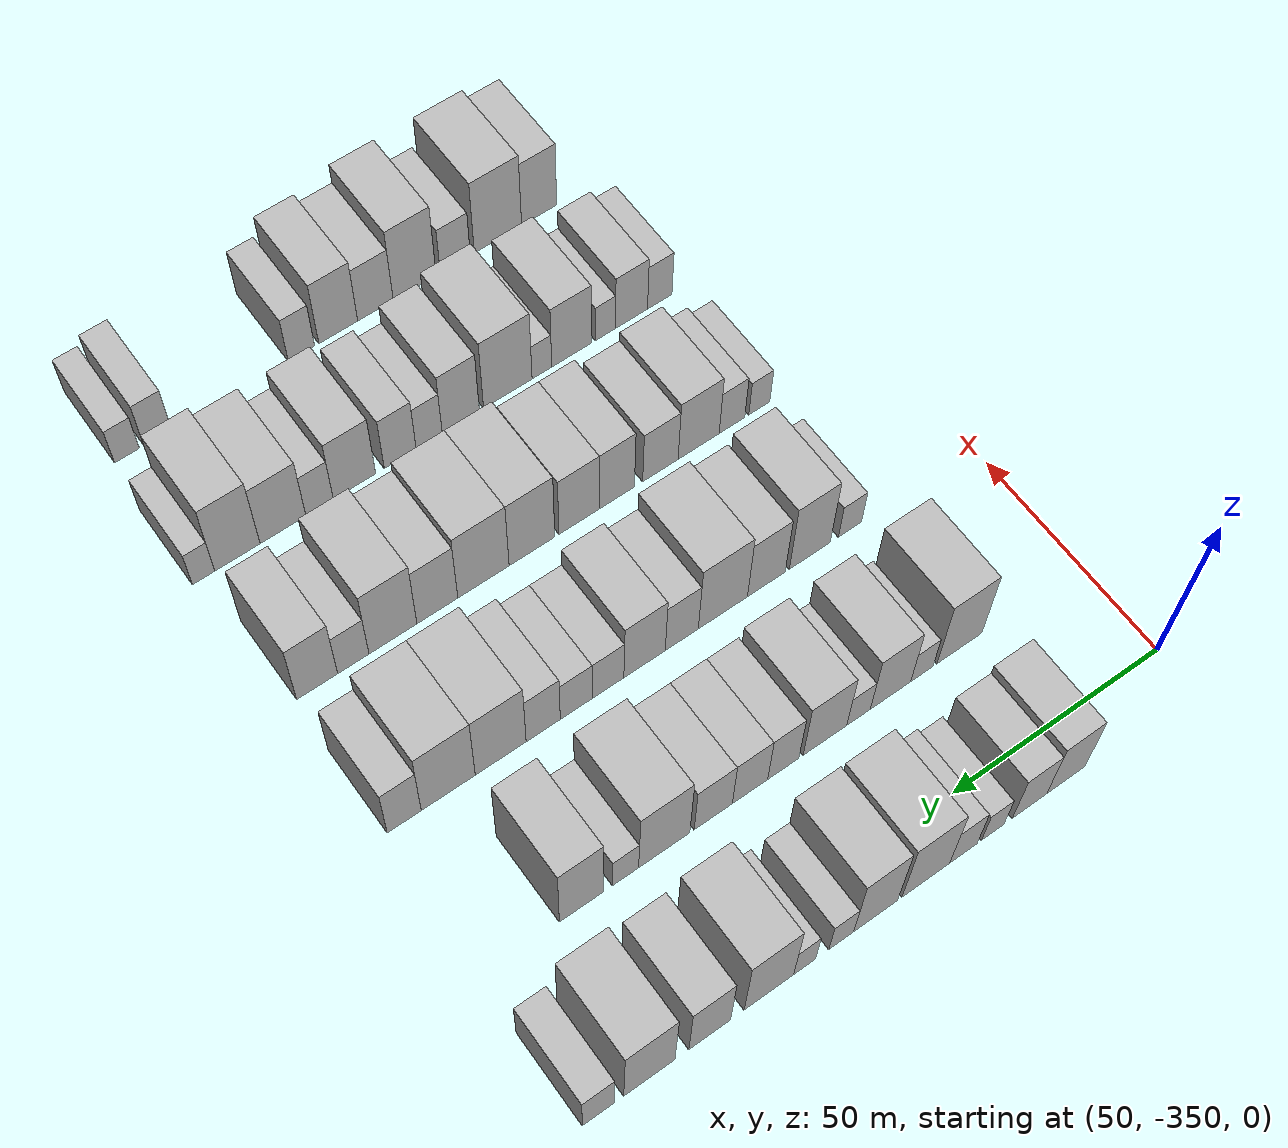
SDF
<sdf version="1.6">
 <world name="default">
  <model name="building_22">
   <static>1</static>
   <pose>50.0000 -318.6219 0 0.000000 0.000000 0.000000</pose>
   <link name="link">
    <pose>0 0 10.50 0 0 0</pose>
    <collision name="collision"><geometry><box><size>20.0000 9.2793 21.0000</size></box></geometry></collision>
    <visual name="visual">
     <cast_shadows>0</cast_shadows>
     <geometry><box><size>20.0000 9.2793 21.0000</size></box></geometry>
     <material>
      <script>
       <uri>model://HANNAS_wall/materials/scripts</uri>
       <uri>model://HANNAS_wall/materials/textures</uri>
       <name>vrc/HANNAS_wall</name>
      </script>
     </material>
    </visual>
   </link>
  </model>
  <model name="building_23">
   <static>1</static>
   <pose>50.0000 -309.8643 0 0.000000 0.000000 0.000000</pose>
   <link name="link">
    <pose>0 0 9.00 0 0 0</pose>
    <collision name="collision"><geometry><box><size>20.0000 8.2358 18.0000</size></box></geometry></collision>
    <visual name="visual">
     <cast_shadows>0</cast_shadows>
     <geometry><box><size>20.0000 8.2358 18.0000</size></box></geometry>
     <material>
      <script>
       <uri>model://HANNAS_wall/materials/scripts</uri>
       <uri>model://HANNAS_wall/materials/textures</uri>
       <name>vrc/HANNAS_wall</name>
      </script>
     </material>
    </visual>
   </link>
  </model>
  <model name="building_24">
   <static>1</static>
   <pose>50.0000 -301.0846 0 0.000000 0.000000 0.000000</pose>
   <link name="link">
    <pose>0 0 6.00 0 0 0</pose>
    <collision name="collision"><geometry><box><size>20.0000 5.3236 12.0000</size></box></geometry></collision>
    <visual name="visual">
     <cast_shadows>0</cast_shadows>
     <geometry><box><size>20.0000 5.3236 12.0000</size></box></geometry>
     <material>
      <script>
       <uri>model://HANNAS_wall/materials/scripts</uri>
       <uri>model://HANNAS_wall/materials/textures</uri>
       <name>vrc/HANNAS_wall</name>
      </script>
     </material>
    </visual>
   </link>
  </model>
  <model name="building_25">
   <static>1</static>
   <pose>50.0000 -294.1895 0 0.000000 0.000000 0.000000</pose>
   <link name="link">
    <pose>0 0 7.50 0 0 0</pose>
    <collision name="collision"><geometry><box><size>20.0000 6.4666 15.0000</size></box></geometry></collision>
    <visual name="visual">
     <cast_shadows>0</cast_shadows>
     <geometry><box><size>20.0000 6.4666 15.0000</size></box></geometry>
     <material>
      <script>
       <uri>model://HANNAS_wall/materials/scripts</uri>
       <uri>model://HANNAS_wall/materials/textures</uri>
       <name>vrc/HANNAS_wall</name>
      </script>
     </material>
    </visual>
   </link>
  </model>
  <model name="building_26">
   <static>1</static>
   <pose>50.0000 -285.3970 0 0.000000 0.000000 0.000000</pose>
   <link name="link">
    <pose>0 0 12.00 0 0 0</pose>
    <collision name="collision"><geometry><box><size>20.0000 11.1183 24.0000</size></box></geometry></collision>
    <visual name="visual">
     <cast_shadows>0</cast_shadows>
     <geometry><box><size>20.0000 11.1183 24.0000</size></box></geometry>
     <material>
      <script>
       <uri>model://HANNAS_wall/materials/scripts</uri>
       <uri>model://HANNAS_wall/materials/textures</uri>
       <name>vrc/HANNAS_wall</name>
      </script>
     </material>
    </visual>
   </link>
  </model>
  <model name="building_27">
   <static>1</static>
   <pose>50.0000 -273.7909 0 0.000000 0.000000 0.000000</pose>
   <link name="link">
    <pose>0 0 12.00 0 0 0</pose>
    <collision name="collision"><geometry><box><size>20.0000 10.0939 24.0000</size></box></geometry></collision>
    <visual name="visual">
     <cast_shadows>0</cast_shadows>
     <geometry><box><size>20.0000 10.0939 24.0000</size></box></geometry>
     <material>
      <script>
       <uri>model://HANNAS_wall/materials/scripts</uri>
       <uri>model://HANNAS_wall/materials/textures</uri>
       <name>vrc/HANNAS_wall</name>
      </script>
     </material>
    </visual>
   </link>
  </model>
  <model name="building_28">
   <static>1</static>
   <pose>50.0000 -265.9480 0 0.000000 0.000000 0.000000</pose>
   <link name="link">
    <pose>0 0 6.00 0 0 0</pose>
    <collision name="collision"><geometry><box><size>20.0000 5.5919 12.0000</size></box></geometry></collision>
    <visual name="visual">
     <cast_shadows>0</cast_shadows>
     <geometry><box><size>20.0000 5.5919 12.0000</size></box></geometry>
     <material>
      <script>
       <uri>model://HANNAS_wall/materials/scripts</uri>
       <uri>model://HANNAS_wall/materials/textures</uri>
       <name>vrc/HANNAS_wall</name>
      </script>
     </material>
    </visual>
   </link>
  </model>
  <model name="building_29">
   <static>1</static>
   <pose>50.0000 -257.6963 0 0.000000 0.000000 0.000000</pose>
   <link name="link">
    <pose>0 0 6.00 0 0 0</pose>
    <collision name="collision"><geometry><box><size>20.0000 4.9115 12.0000</size></box></geometry></collision>
    <visual name="visual">
     <cast_shadows>0</cast_shadows>
     <geometry><box><size>20.0000 4.9115 12.0000</size></box></geometry>
     <material>
      <script>
       <uri>model://HANNAS_wall/materials/scripts</uri>
       <uri>model://HANNAS_wall/materials/textures</uri>
       <name>vrc/HANNAS_wall</name>
      </script>
     </material>
    </visual>
   </link>
  </model>
  <model name="building_30">
   <static>1</static>
   <pose>50.0000 -249.7525 0 0.000000 0.000000 0.000000</pose>
   <link name="link">
    <pose>0 0 12.00 0 0 0</pose>
    <collision name="collision"><geometry><box><size>20.0000 10.9759 24.0000</size></box></geometry></collision>
    <visual name="visual">
     <cast_shadows>0</cast_shadows>
     <geometry><box><size>20.0000 10.9759 24.0000</size></box></geometry>
     <material>
      <script>
       <uri>model://HANNAS_wall/materials/scripts</uri>
       <uri>model://HANNAS_wall/materials/textures</uri>
       <name>vrc/HANNAS_wall</name>
      </script>
     </material>
    </visual>
   </link>
  </model>
  <model name="building_31">
   <static>1</static>
   <pose>50.0000 -236.7100 0 0.000000 0.000000 0.000000</pose>
   <link name="link">
    <pose>0 0 10.50 0 0 0</pose>
    <collision name="collision"><geometry><box><size>20.0000 9.1091 21.0000</size></box></geometry></collision>
    <visual name="visual">
     <cast_shadows>0</cast_shadows>
     <geometry><box><size>20.0000 9.1091 21.0000</size></box></geometry>
     <material>
      <script>
       <uri>model://HANNAS_wall/materials/scripts</uri>
       <uri>model://HANNAS_wall/materials/textures</uri>
       <name>vrc/HANNAS_wall</name>
      </script>
     </material>
    </visual>
   </link>
  </model>
  <model name="building_32">
   <static>1</static>
   <pose>50.0000 -223.6549 0 0.000000 0.000000 0.000000</pose>
   <link name="link">
    <pose>0 0 12.00 0 0 0</pose>
    <collision name="collision"><geometry><box><size>20.0000 11.0012 24.0000</size></box></geometry></collision>
    <visual name="visual">
     <cast_shadows>0</cast_shadows>
     <geometry><box><size>20.0000 11.0012 24.0000</size></box></geometry>
     <material>
      <script>
       <uri>model://HANNAS_wall/materials/scripts</uri>
       <uri>model://HANNAS_wall/materials/textures</uri>
       <name>vrc/HANNAS_wall</name>
      </script>
     </material>
    </visual>
   </link>
  </model>
  <model name="building_33">
   <static>1</static>
   <pose>50.0000 -212.7712 0 0.000000 0.000000 0.000000</pose>
   <link name="link">
    <pose>0 0 7.50 0 0 0</pose>
    <collision name="collision"><geometry><box><size>20.0000 6.7662 15.0000</size></box></geometry></collision>
    <visual name="visual">
     <cast_shadows>0</cast_shadows>
     <geometry><box><size>20.0000 6.7662 15.0000</size></box></geometry>
     <material>
      <script>
       <uri>model://HANNAS_wall/materials/scripts</uri>
       <uri>model://HANNAS_wall/materials/textures</uri>
       <name>vrc/HANNAS_wall</name>
      </script>
     </material>
    </visual>
   </link>
  </model>
  <model name="building_142">
   <static>1</static>
   <pose>82.0000 -319.7388 0 0.000000 0.000000 0.000000</pose>
   <link name="link">
    <pose>0 0 12.00 0 0 0</pose>
    <collision name="collision"><geometry><box><size>20.0000 10.9948 24.0000</size></box></geometry></collision>
    <visual name="visual">
     <cast_shadows>0</cast_shadows>
     <geometry><box><size>20.0000 10.9948 24.0000</size></box></geometry>
     <material>
      <script>
       <uri>model://HANNAS_wall/materials/scripts</uri>
       <uri>model://HANNAS_wall/materials/textures</uri>
       <name>vrc/HANNAS_wall</name>
      </script>
     </material>
    </visual>
   </link>
  </model>
  <model name="building_143">
   <static>1</static>
   <pose>82.0000 -310.5391 0 0.000000 0.000000 0.000000</pose>
   <link name="link">
    <pose>0 0 6.00 0 0 0</pose>
    <collision name="collision"><geometry><box><size>20.0000 5.4045 12.0000</size></box></geometry></collision>
    <visual name="visual">
     <cast_shadows>0</cast_shadows>
     <geometry><box><size>20.0000 5.4045 12.0000</size></box></geometry>
     <material>
      <script>
       <uri>model://HANNAS_wall/materials/scripts</uri>
       <uri>model://HANNAS_wall/materials/textures</uri>
       <name>vrc/HANNAS_wall</name>
      </script>
     </material>
    </visual>
   </link>
  </model>
  <model name="building_144">
   <static>1</static>
   <pose>82.0000 -302.9919 0 0.000000 0.000000 0.000000</pose>
   <link name="link">
    <pose>0 0 10.50 0 0 0</pose>
    <collision name="collision"><geometry><box><size>20.0000 9.6900 21.0000</size></box></geometry></collision>
    <visual name="visual">
     <cast_shadows>0</cast_shadows>
     <geometry><box><size>20.0000 9.6900 21.0000</size></box></geometry>
     <material>
      <script>
       <uri>model://HANNAS_wall/materials/scripts</uri>
       <uri>model://HANNAS_wall/materials/textures</uri>
       <name>vrc/HANNAS_wall</name>
      </script>
     </material>
    </visual>
   </link>
  </model>
  <model name="building_145">
   <static>1</static>
   <pose>82.0000 -295.3424 0 0.000000 0.000000 0.000000</pose>
   <link name="link">
    <pose>0 0 6.00 0 0 0</pose>
    <collision name="collision"><geometry><box><size>20.0000 5.6089 12.0000</size></box></geometry></collision>
    <visual name="visual">
     <cast_shadows>0</cast_shadows>
     <geometry><box><size>20.0000 5.6089 12.0000</size></box></geometry>
     <material>
      <script>
       <uri>model://HANNAS_wall/materials/scripts</uri>
       <uri>model://HANNAS_wall/materials/textures</uri>
       <name>vrc/HANNAS_wall</name>
      </script>
     </material>
    </visual>
   </link>
  </model>
  <model name="building_146">
   <static>1</static>
   <pose>82.0000 -287.3828 0 0.000000 0.000000 0.000000</pose>
   <link name="link">
    <pose>0 0 10.50 0 0 0</pose>
    <collision name="collision"><geometry><box><size>20.0000 10.3103 21.0000</size></box></geometry></collision>
    <visual name="visual">
     <cast_shadows>0</cast_shadows>
     <geometry><box><size>20.0000 10.3103 21.0000</size></box></geometry>
     <material>
      <script>
       <uri>model://HANNAS_wall/materials/scripts</uri>
       <uri>model://HANNAS_wall/materials/textures</uri>
       <name>vrc/HANNAS_wall</name>
      </script>
     </material>
    </visual>
   </link>
  </model>
  <model name="building_147">
   <static>1</static>
   <pose>82.0000 -277.5974 0 0.000000 0.000000 0.000000</pose>
   <link name="link">
    <pose>0 0 9.00 0 0 0</pose>
    <collision name="collision"><geometry><box><size>20.0000 7.2604 18.0000</size></box></geometry></collision>
    <visual name="visual">
     <cast_shadows>0</cast_shadows>
     <geometry><box><size>20.0000 7.2604 18.0000</size></box></geometry>
     <material>
      <script>
       <uri>model://HANNAS_wall/materials/scripts</uri>
       <uri>model://HANNAS_wall/materials/textures</uri>
       <name>vrc/HANNAS_wall</name>
      </script>
     </material>
    </visual>
   </link>
  </model>
  <model name="building_148">
   <static>1</static>
   <pose>82.0000 -269.8889 0 0.000000 0.000000 0.000000</pose>
   <link name="link">
    <pose>0 0 9.00 0 0 0</pose>
    <collision name="collision"><geometry><box><size>20.0000 8.1567 18.0000</size></box></geometry></collision>
    <visual name="visual">
     <cast_shadows>0</cast_shadows>
     <geometry><box><size>20.0000 8.1567 18.0000</size></box></geometry>
     <material>
      <script>
       <uri>model://HANNAS_wall/materials/scripts</uri>
       <uri>model://HANNAS_wall/materials/textures</uri>
       <name>vrc/HANNAS_wall</name>
      </script>
     </material>
    </visual>
   </link>
  </model>
  <model name="building_149">
   <static>1</static>
   <pose>82.0000 -261.4583 0 0.000000 0.000000 0.000000</pose>
   <link name="link">
    <pose>0 0 9.00 0 0 0</pose>
    <collision name="collision"><geometry><box><size>20.0000 8.7045 18.0000</size></box></geometry></collision>
    <visual name="visual">
     <cast_shadows>0</cast_shadows>
     <geometry><box><size>20.0000 8.7045 18.0000</size></box></geometry>
     <material>
      <script>
       <uri>model://HANNAS_wall/materials/scripts</uri>
       <uri>model://HANNAS_wall/materials/textures</uri>
       <name>vrc/HANNAS_wall</name>
      </script>
     </material>
    </visual>
   </link>
  </model>
  <model name="building_150">
   <static>1</static>
   <pose>82.0000 -250.3391 0 0.000000 0.000000 0.000000</pose>
   <link name="link">
    <pose>0 0 12.00 0 0 0</pose>
    <collision name="collision"><geometry><box><size>20.0000 11.5338 24.0000</size></box></geometry></collision>
    <visual name="visual">
     <cast_shadows>0</cast_shadows>
     <geometry><box><size>20.0000 11.5338 24.0000</size></box></geometry>
     <material>
      <script>
       <uri>model://HANNAS_wall/materials/scripts</uri>
       <uri>model://HANNAS_wall/materials/textures</uri>
       <name>vrc/HANNAS_wall</name>
      </script>
     </material>
    </visual>
   </link>
  </model>
  <model name="building_151">
   <static>1</static>
   <pose>82.0000 -241.6636 0 0.000000 0.000000 0.000000</pose>
   <link name="link">
    <pose>0 0 6.00 0 0 0</pose>
    <collision name="collision"><geometry><box><size>20.0000 5.8171 12.0000</size></box></geometry></collision>
    <visual name="visual">
     <cast_shadows>0</cast_shadows>
     <geometry><box><size>20.0000 5.8171 12.0000</size></box></geometry>
     <material>
      <script>
       <uri>model://HANNAS_wall/materials/scripts</uri>
       <uri>model://HANNAS_wall/materials/textures</uri>
       <name>vrc/HANNAS_wall</name>
      </script>
     </material>
    </visual>
   </link>
  </model>
  <model name="building_152">
   <static>1</static>
   <pose>82.0000 -231.9148 0 0.000000 0.000000 0.000000</pose>
   <link name="link">
    <pose>0 0 12.00 0 0 0</pose>
    <collision name="collision"><geometry><box><size>20.0000 9.6806 24.0000</size></box></geometry></collision>
    <visual name="visual">
     <cast_shadows>0</cast_shadows>
     <geometry><box><size>20.0000 9.6806 24.0000</size></box></geometry>
     <material>
      <script>
       <uri>model://HANNAS_wall/materials/scripts</uri>
       <uri>model://HANNAS_wall/materials/textures</uri>
       <name>vrc/HANNAS_wall</name>
      </script>
     </material>
    </visual>
   </link>
  </model>
  <model name="building_259">
   <static>1</static>
   <pose>114.0000 -318.6423 0 0.000000 0.000000 0.000000</pose>
   <link name="link">
    <pose>0 0 6.00 0 0 0</pose>
    <collision name="collision"><geometry><box><size>20.0000 5.7408 12.0000</size></box></geometry></collision>
    <visual name="visual">
     <cast_shadows>0</cast_shadows>
     <geometry><box><size>20.0000 5.7408 12.0000</size></box></geometry>
     <material>
      <script>
       <uri>model://HANNAS_wall/materials/scripts</uri>
       <uri>model://HANNAS_wall/materials/textures</uri>
       <name>vrc/HANNAS_wall</name>
      </script>
     </material>
    </visual>
   </link>
  </model>
  <model name="building_260">
   <static>1</static>
   <pose>114.0000 -308.7500 0 0.000000 0.000000 0.000000</pose>
   <link name="link">
    <pose>0 0 12.00 0 0 0</pose>
    <collision name="collision"><geometry><box><size>20.0000 10.0440 24.0000</size></box></geometry></collision>
    <visual name="visual">
     <cast_shadows>0</cast_shadows>
     <geometry><box><size>20.0000 10.0440 24.0000</size></box></geometry>
     <material>
      <script>
       <uri>model://HANNAS_wall/materials/scripts</uri>
       <uri>model://HANNAS_wall/materials/textures</uri>
       <name>vrc/HANNAS_wall</name>
      </script>
     </material>
    </visual>
   </link>
  </model>
  <model name="building_261">
   <static>1</static>
   <pose>114.0000 -298.1707 0 0.000000 0.000000 0.000000</pose>
   <link name="link">
    <pose>0 0 10.50 0 0 0</pose>
    <collision name="collision"><geometry><box><size>20.0000 9.1146 21.0000</size></box></geometry></collision>
    <visual name="visual">
     <cast_shadows>0</cast_shadows>
     <geometry><box><size>20.0000 9.1146 21.0000</size></box></geometry>
     <material>
      <script>
       <uri>model://HANNAS_wall/materials/scripts</uri>
       <uri>model://HANNAS_wall/materials/textures</uri>
       <name>vrc/HANNAS_wall</name>
      </script>
     </material>
    </visual>
   </link>
  </model>
  <model name="building_262">
   <static>1</static>
   <pose>114.0000 -287.7385 0 0.000000 0.000000 0.000000</pose>
   <link name="link">
    <pose>0 0 12.00 0 0 0</pose>
    <collision name="collision"><geometry><box><size>20.0000 11.7498 24.0000</size></box></geometry></collision>
    <visual name="visual">
     <cast_shadows>0</cast_shadows>
     <geometry><box><size>20.0000 11.7498 24.0000</size></box></geometry>
     <material>
      <script>
       <uri>model://HANNAS_wall/materials/scripts</uri>
       <uri>model://HANNAS_wall/materials/textures</uri>
       <name>vrc/HANNAS_wall</name>
      </script>
     </material>
    </visual>
   </link>
  </model>
  <model name="building_263">
   <static>1</static>
   <pose>114.0000 -277.9544 0 0.000000 0.000000 0.000000</pose>
   <link name="link">
    <pose>0 0 9.00 0 0 0</pose>
    <collision name="collision"><geometry><box><size>20.0000 7.8183 18.0000</size></box></geometry></collision>
    <visual name="visual">
     <cast_shadows>0</cast_shadows>
     <geometry><box><size>20.0000 7.8183 18.0000</size></box></geometry>
     <material>
      <script>
       <uri>model://HANNAS_wall/materials/scripts</uri>
       <uri>model://HANNAS_wall/materials/textures</uri>
       <name>vrc/HANNAS_wall</name>
      </script>
     </material>
    </visual>
   </link>
  </model>
  <model name="building_264">
   <static>1</static>
   <pose>114.0000 -269.2174 0 0.000000 0.000000 0.000000</pose>
   <link name="link">
    <pose>0 0 10.50 0 0 0</pose>
    <collision name="collision"><geometry><box><size>20.0000 9.6557 21.0000</size></box></geometry></collision>
    <visual name="visual">
     <cast_shadows>0</cast_shadows>
     <geometry><box><size>20.0000 9.6557 21.0000</size></box></geometry>
     <material>
      <script>
       <uri>model://HANNAS_wall/materials/scripts</uri>
       <uri>model://HANNAS_wall/materials/textures</uri>
       <name>vrc/HANNAS_wall</name>
      </script>
     </material>
    </visual>
   </link>
  </model>
  <model name="building_265">
   <static>1</static>
   <pose>114.0000 -260.7595 0 0.000000 0.000000 0.000000</pose>
   <link name="link">
    <pose>0 0 7.50 0 0 0</pose>
    <collision name="collision"><geometry><box><size>20.0000 7.2601 15.0000</size></box></geometry></collision>
    <visual name="visual">
     <cast_shadows>0</cast_shadows>
     <geometry><box><size>20.0000 7.2601 15.0000</size></box></geometry>
     <material>
      <script>
       <uri>model://HANNAS_wall/materials/scripts</uri>
       <uri>model://HANNAS_wall/materials/textures</uri>
       <name>vrc/HANNAS_wall</name>
      </script>
     </material>
    </visual>
   </link>
  </model>
  <model name="building_266">
   <static>1</static>
   <pose>114.0000 -253.4511 0 0.000000 0.000000 0.000000</pose>
   <link name="link">
    <pose>0 0 7.50 0 0 0</pose>
    <collision name="collision"><geometry><box><size>20.0000 7.3569 15.0000</size></box></geometry></collision>
    <visual name="visual">
     <cast_shadows>0</cast_shadows>
     <geometry><box><size>20.0000 7.3569 15.0000</size></box></geometry>
     <material>
      <script>
       <uri>model://HANNAS_wall/materials/scripts</uri>
       <uri>model://HANNAS_wall/materials/textures</uri>
       <name>vrc/HANNAS_wall</name>
      </script>
     </material>
    </visual>
   </link>
  </model>
  <model name="building_267">
   <static>1</static>
   <pose>114.0000 -245.8973 0 0.000000 0.000000 0.000000</pose>
   <link name="link">
    <pose>0 0 9.00 0 0 0</pose>
    <collision name="collision"><geometry><box><size>20.0000 7.7507 18.0000</size></box></geometry></collision>
    <visual name="visual">
     <cast_shadows>0</cast_shadows>
     <geometry><box><size>20.0000 7.7507 18.0000</size></box></geometry>
     <material>
      <script>
       <uri>model://HANNAS_wall/materials/scripts</uri>
       <uri>model://HANNAS_wall/materials/textures</uri>
       <name>vrc/HANNAS_wall</name>
      </script>
     </material>
    </visual>
   </link>
  </model>
  <model name="building_268">
   <static>1</static>
   <pose>114.0000 -236.3240 0 0.000000 0.000000 0.000000</pose>
   <link name="link">
    <pose>0 0 12.00 0 0 0</pose>
    <collision name="collision"><geometry><box><size>20.0000 11.3959 24.0000</size></box></geometry></collision>
    <visual name="visual">
     <cast_shadows>0</cast_shadows>
     <geometry><box><size>20.0000 11.3959 24.0000</size></box></geometry>
     <material>
      <script>
       <uri>model://HANNAS_wall/materials/scripts</uri>
       <uri>model://HANNAS_wall/materials/textures</uri>
       <name>vrc/HANNAS_wall</name>
      </script>
     </material>
    </visual>
   </link>
  </model>
  <model name="building_269">
   <static>1</static>
   <pose>114.0000 -224.6491 0 0.000000 0.000000 0.000000</pose>
   <link name="link">
    <pose>0 0 12.00 0 0 0</pose>
    <collision name="collision"><geometry><box><size>20.0000 11.9540 24.0000</size></box></geometry></collision>
    <visual name="visual">
     <cast_shadows>0</cast_shadows>
     <geometry><box><size>20.0000 11.9540 24.0000</size></box></geometry>
     <material>
      <script>
       <uri>model://HANNAS_wall/materials/scripts</uri>
       <uri>model://HANNAS_wall/materials/textures</uri>
       <name>vrc/HANNAS_wall</name>
      </script>
     </material>
    </visual>
   </link>
  </model>
  <model name="building_270">
   <static>1</static>
   <pose>114.0000 -214.9457 0 0.000000 0.000000 0.000000</pose>
   <link name="link">
    <pose>0 0 9.00 0 0 0</pose>
    <collision name="collision"><geometry><box><size>20.0000 7.4529 18.0000</size></box></geometry></collision>
    <visual name="visual">
     <cast_shadows>0</cast_shadows>
     <geometry><box><size>20.0000 7.4529 18.0000</size></box></geometry>
     <material>
      <script>
       <uri>model://HANNAS_wall/materials/scripts</uri>
       <uri>model://HANNAS_wall/materials/textures</uri>
       <name>vrc/HANNAS_wall</name>
      </script>
     </material>
    </visual>
   </link>
  </model>
  <model name="building_376">
   <static>1</static>
   <pose>146.0000 -320.8804 0 0.000000 0.000000 0.000000</pose>
   <link name="link">
    <pose>0 0 6.00 0 0 0</pose>
    <collision name="collision"><geometry><box><size>20.0000 5.2894 12.0000</size></box></geometry></collision>
    <visual name="visual">
     <cast_shadows>0</cast_shadows>
     <geometry><box><size>20.0000 5.2894 12.0000</size></box></geometry>
     <material>
      <script>
       <uri>model://HANNAS_wall/materials/scripts</uri>
       <uri>model://HANNAS_wall/materials/textures</uri>
       <name>vrc/HANNAS_wall</name>
      </script>
     </material>
    </visual>
   </link>
  </model>
  <model name="building_377">
   <static>1</static>
   <pose>146.0000 -314.0426 0 0.000000 0.000000 0.000000</pose>
   <link name="link">
    <pose>0 0 7.50 0 0 0</pose>
    <collision name="collision"><geometry><box><size>20.0000 6.3862 15.0000</size></box></geometry></collision>
    <visual name="visual">
     <cast_shadows>0</cast_shadows>
     <geometry><box><size>20.0000 6.3862 15.0000</size></box></geometry>
     <material>
      <script>
       <uri>model://HANNAS_wall/materials/scripts</uri>
       <uri>model://HANNAS_wall/materials/textures</uri>
       <name>vrc/HANNAS_wall</name>
      </script>
     </material>
    </visual>
   </link>
  </model>
  <model name="building_378">
   <static>1</static>
   <pose>146.0000 -305.7832 0 0.000000 0.000000 0.000000</pose>
   <link name="link">
    <pose>0 0 10.50 0 0 0</pose>
    <collision name="collision"><geometry><box><size>20.0000 10.1325 21.0000</size></box></geometry></collision>
    <visual name="visual">
     <cast_shadows>0</cast_shadows>
     <geometry><box><size>20.0000 10.1325 21.0000</size></box></geometry>
     <material>
      <script>
       <uri>model://HANNAS_wall/materials/scripts</uri>
       <uri>model://HANNAS_wall/materials/textures</uri>
       <name>vrc/HANNAS_wall</name>
      </script>
     </material>
    </visual>
   </link>
  </model>
  <model name="building_379">
   <static>1</static>
   <pose>146.0000 -296.3856 0 0.000000 0.000000 0.000000</pose>
   <link name="link">
    <pose>0 0 9.00 0 0 0</pose>
    <collision name="collision"><geometry><box><size>20.0000 8.6628 18.0000</size></box></geometry></collision>
    <visual name="visual">
     <cast_shadows>0</cast_shadows>
     <geometry><box><size>20.0000 8.6628 18.0000</size></box></geometry>
     <material>
      <script>
       <uri>model://HANNAS_wall/materials/scripts</uri>
       <uri>model://HANNAS_wall/materials/textures</uri>
       <name>vrc/HANNAS_wall</name>
      </script>
     </material>
    </visual>
   </link>
  </model>
  <model name="building_380">
   <static>1</static>
   <pose>146.0000 -285.8258 0 0.000000 0.000000 0.000000</pose>
   <link name="link">
    <pose>0 0 10.50 0 0 0</pose>
    <collision name="collision"><geometry><box><size>20.0000 8.4567 21.0000</size></box></geometry></collision>
    <visual name="visual">
     <cast_shadows>0</cast_shadows>
     <geometry><box><size>20.0000 8.4567 21.0000</size></box></geometry>
     <material>
      <script>
       <uri>model://HANNAS_wall/materials/scripts</uri>
       <uri>model://HANNAS_wall/materials/textures</uri>
       <name>vrc/HANNAS_wall</name>
      </script>
     </material>
    </visual>
   </link>
  </model>
  <model name="building_381">
   <static>1</static>
   <pose>146.0000 -276.7753 0 0.000000 0.000000 0.000000</pose>
   <link name="link">
    <pose>0 0 10.50 0 0 0</pose>
    <collision name="collision"><geometry><box><size>20.0000 9.6442 21.0000</size></box></geometry></collision>
    <visual name="visual">
     <cast_shadows>0</cast_shadows>
     <geometry><box><size>20.0000 9.6442 21.0000</size></box></geometry>
     <material>
      <script>
       <uri>model://HANNAS_wall/materials/scripts</uri>
       <uri>model://HANNAS_wall/materials/textures</uri>
       <name>vrc/HANNAS_wall</name>
      </script>
     </material>
    </visual>
   </link>
  </model>
  <model name="building_382">
   <static>1</static>
   <pose>146.0000 -265.5811 0 0.000000 0.000000 0.000000</pose>
   <link name="link">
    <pose>0 0 12.00 0 0 0</pose>
    <collision name="collision"><geometry><box><size>20.0000 10.7444 24.0000</size></box></geometry></collision>
    <visual name="visual">
     <cast_shadows>0</cast_shadows>
     <geometry><box><size>20.0000 10.7444 24.0000</size></box></geometry>
     <material>
      <script>
       <uri>model://HANNAS_wall/materials/scripts</uri>
       <uri>model://HANNAS_wall/materials/textures</uri>
       <name>vrc/HANNAS_wall</name>
      </script>
     </material>
    </visual>
   </link>
  </model>
  <model name="building_383">
   <static>1</static>
   <pose>146.0000 -254.2408 0 0.000000 0.000000 0.000000</pose>
   <link name="link">
    <pose>0 0 12.00 0 0 0</pose>
    <collision name="collision"><geometry><box><size>20.0000 11.9362 24.0000</size></box></geometry></collision>
    <visual name="visual">
     <cast_shadows>0</cast_shadows>
     <geometry><box><size>20.0000 11.9362 24.0000</size></box></geometry>
     <material>
      <script>
       <uri>model://HANNAS_wall/materials/scripts</uri>
       <uri>model://HANNAS_wall/materials/textures</uri>
       <name>vrc/HANNAS_wall</name>
      </script>
     </material>
    </visual>
   </link>
  </model>
  <model name="building_384">
   <static>1</static>
   <pose>146.0000 -243.5811 0 0.000000 0.000000 0.000000</pose>
   <link name="link">
    <pose>0 0 10.50 0 0 0</pose>
    <collision name="collision"><geometry><box><size>20.0000 9.3831 21.0000</size></box></geometry></collision>
    <visual name="visual">
     <cast_shadows>0</cast_shadows>
     <geometry><box><size>20.0000 9.3831 21.0000</size></box></geometry>
     <material>
      <script>
       <uri>model://HANNAS_wall/materials/scripts</uri>
       <uri>model://HANNAS_wall/materials/textures</uri>
       <name>vrc/HANNAS_wall</name>
      </script>
     </material>
    </visual>
   </link>
  </model>
  <model name="building_385">
   <static>1</static>
   <pose>146.0000 -233.4544 0 0.000000 0.000000 0.000000</pose>
   <link name="link">
    <pose>0 0 12.00 0 0 0</pose>
    <collision name="collision"><geometry><box><size>20.0000 10.8703 24.0000</size></box></geometry></collision>
    <visual name="visual">
     <cast_shadows>0</cast_shadows>
     <geometry><box><size>20.0000 10.8703 24.0000</size></box></geometry>
     <material>
      <script>
       <uri>model://HANNAS_wall/materials/scripts</uri>
       <uri>model://HANNAS_wall/materials/textures</uri>
       <name>vrc/HANNAS_wall</name>
      </script>
     </material>
    </visual>
   </link>
  </model>
  <model name="building_386">
   <static>1</static>
   <pose>146.0000 -224.5022 0 0.000000 0.000000 0.000000</pose>
   <link name="link">
    <pose>0 0 7.50 0 0 0</pose>
    <collision name="collision"><geometry><box><size>20.0000 7.0340 15.0000</size></box></geometry></collision>
    <visual name="visual">
     <cast_shadows>0</cast_shadows>
     <geometry><box><size>20.0000 7.0340 15.0000</size></box></geometry>
     <material>
      <script>
       <uri>model://HANNAS_wall/materials/scripts</uri>
       <uri>model://HANNAS_wall/materials/textures</uri>
       <name>vrc/HANNAS_wall</name>
      </script>
     </material>
    </visual>
   </link>
  </model>
  <model name="building_387">
   <static>1</static>
   <pose>146.0000 -216.4278 0 0.000000 0.000000 0.000000</pose>
   <link name="link">
    <pose>0 0 10.50 0 0 0</pose>
    <collision name="collision"><geometry><box><size>20.0000 9.1149 21.0000</size></box></geometry></collision>
    <visual name="visual">
     <cast_shadows>0</cast_shadows>
     <geometry><box><size>20.0000 9.1149 21.0000</size></box></geometry>
     <material>
      <script>
       <uri>model://HANNAS_wall/materials/scripts</uri>
       <uri>model://HANNAS_wall/materials/textures</uri>
       <name>vrc/HANNAS_wall</name>
      </script>
     </material>
    </visual>
   </link>
  </model>
  <model name="building_489">
   <static>1</static>
   <pose>178.0000 -319.6598 0 0.000000 0.000000 0.000000</pose>
   <link name="link">
    <pose>0 0 7.50 0 0 0</pose>
    <collision name="collision"><geometry><box><size>20.0000 6.1965 15.0000</size></box></geometry></collision>
    <visual name="visual">
     <cast_shadows>0</cast_shadows>
     <geometry><box><size>20.0000 6.1965 15.0000</size></box></geometry>
     <material>
      <script>
       <uri>model://HANNAS_wall/materials/scripts</uri>
       <uri>model://HANNAS_wall/materials/textures</uri>
       <name>vrc/HANNAS_wall</name>
      </script>
     </material>
    </visual>
   </link>
  </model>
  <model name="building_490">
   <static>1</static>
   <pose>178.0000 -312.5099 0 0.000000 0.000000 0.000000</pose>
   <link name="link">
    <pose>0 0 9.00 0 0 0</pose>
    <collision name="collision"><geometry><box><size>20.0000 8.1034 18.0000</size></box></geometry></collision>
    <visual name="visual">
     <cast_shadows>0</cast_shadows>
     <geometry><box><size>20.0000 8.1034 18.0000</size></box></geometry>
     <material>
      <script>
       <uri>model://HANNAS_wall/materials/scripts</uri>
       <uri>model://HANNAS_wall/materials/textures</uri>
       <name>vrc/HANNAS_wall</name>
      </script>
     </material>
    </visual>
   </link>
  </model>
  <model name="building_491">
   <static>1</static>
   <pose>178.0000 -305.9641 0 0.000000 0.000000 0.000000</pose>
   <link name="link">
    <pose>0 0 6.00 0 0 0</pose>
    <collision name="collision"><geometry><box><size>20.0000 4.9882 12.0000</size></box></geometry></collision>
    <visual name="visual">
     <cast_shadows>0</cast_shadows>
     <geometry><box><size>20.0000 4.9882 12.0000</size></box></geometry>
     <material>
      <script>
       <uri>model://HANNAS_wall/materials/scripts</uri>
       <uri>model://HANNAS_wall/materials/textures</uri>
       <name>vrc/HANNAS_wall</name>
      </script>
     </material>
    </visual>
   </link>
  </model>
  <model name="building_492">
   <static>1</static>
   <pose>178.0000 -297.5568 0 0.000000 0.000000 0.000000</pose>
   <link name="link">
    <pose>0 0 10.50 0 0 0</pose>
    <collision name="collision"><geometry><box><size>20.0000 9.8264 21.0000</size></box></geometry></collision>
    <visual name="visual">
     <cast_shadows>0</cast_shadows>
     <geometry><box><size>20.0000 9.8264 21.0000</size></box></geometry>
     <material>
      <script>
       <uri>model://HANNAS_wall/materials/scripts</uri>
       <uri>model://HANNAS_wall/materials/textures</uri>
       <name>vrc/HANNAS_wall</name>
      </script>
     </material>
    </visual>
   </link>
  </model>
  <model name="building_493">
   <static>1</static>
   <pose>178.0000 -290.2327 0 0.000000 0.000000 0.000000</pose>
   <link name="link">
    <pose>0 0 6.00 0 0 0</pose>
    <collision name="collision"><geometry><box><size>20.0000 4.8218 12.0000</size></box></geometry></collision>
    <visual name="visual">
     <cast_shadows>0</cast_shadows>
     <geometry><box><size>20.0000 4.8218 12.0000</size></box></geometry>
     <material>
      <script>
       <uri>model://HANNAS_wall/materials/scripts</uri>
       <uri>model://HANNAS_wall/materials/textures</uri>
       <name>vrc/HANNAS_wall</name>
      </script>
     </material>
    </visual>
   </link>
  </model>
  <model name="building_494">
   <static>1</static>
   <pose>178.0000 -281.9154 0 0.000000 0.000000 0.000000</pose>
   <link name="link">
    <pose>0 0 12.00 0 0 0</pose>
    <collision name="collision"><geometry><box><size>20.0000 11.8129 24.0000</size></box></geometry></collision>
    <visual name="visual">
     <cast_shadows>0</cast_shadows>
     <geometry><box><size>20.0000 11.8129 24.0000</size></box></geometry>
     <material>
      <script>
       <uri>model://HANNAS_wall/materials/scripts</uri>
       <uri>model://HANNAS_wall/materials/textures</uri>
       <name>vrc/HANNAS_wall</name>
      </script>
     </material>
    </visual>
   </link>
  </model>
  <model name="building_495">
   <static>1</static>
   <pose>178.0000 -270.5529 0 0.000000 0.000000 0.000000</pose>
   <link name="link">
    <pose>0 0 10.50 0 0 0</pose>
    <collision name="collision"><geometry><box><size>20.0000 8.9120 21.0000</size></box></geometry></collision>
    <visual name="visual">
     <cast_shadows>0</cast_shadows>
     <geometry><box><size>20.0000 8.9120 21.0000</size></box></geometry>
     <material>
      <script>
       <uri>model://HANNAS_wall/materials/scripts</uri>
       <uri>model://HANNAS_wall/materials/textures</uri>
       <name>vrc/HANNAS_wall</name>
      </script>
     </material>
    </visual>
   </link>
  </model>
  <model name="building_496">
   <static>1</static>
   <pose>178.0000 -262.9906 0 0.000000 0.000000 0.000000</pose>
   <link name="link">
    <pose>0 0 7.50 0 0 0</pose>
    <collision name="collision"><geometry><box><size>20.0000 6.2127 15.0000</size></box></geometry></collision>
    <visual name="visual">
     <cast_shadows>0</cast_shadows>
     <geometry><box><size>20.0000 6.2127 15.0000</size></box></geometry>
     <material>
      <script>
       <uri>model://HANNAS_wall/materials/scripts</uri>
       <uri>model://HANNAS_wall/materials/textures</uri>
       <name>vrc/HANNAS_wall</name>
      </script>
     </material>
    </visual>
   </link>
  </model>
  <model name="building_497">
   <static>1</static>
   <pose>178.0000 -256.1101 0 0.000000 0.000000 0.000000</pose>
   <link name="link">
    <pose>0 0 9.00 0 0 0</pose>
    <collision name="collision"><geometry><box><size>20.0000 7.5483 18.0000</size></box></geometry></collision>
    <visual name="visual">
     <cast_shadows>0</cast_shadows>
     <geometry><box><size>20.0000 7.5483 18.0000</size></box></geometry>
     <material>
      <script>
       <uri>model://HANNAS_wall/materials/scripts</uri>
       <uri>model://HANNAS_wall/materials/textures</uri>
       <name>vrc/HANNAS_wall</name>
      </script>
     </material>
    </visual>
   </link>
  </model>
  <model name="building_498">
   <static>1</static>
   <pose>178.0000 -245.3930 0 0.000000 0.000000 0.000000</pose>
   <link name="link">
    <pose>0 0 10.50 0 0 0</pose>
    <collision name="collision"><geometry><box><size>20.0000 9.8859 21.0000</size></box></geometry></collision>
    <visual name="visual">
     <cast_shadows>0</cast_shadows>
     <geometry><box><size>20.0000 9.8859 21.0000</size></box></geometry>
     <material>
      <script>
       <uri>model://HANNAS_wall/materials/scripts</uri>
       <uri>model://HANNAS_wall/materials/textures</uri>
       <name>vrc/HANNAS_wall</name>
      </script>
     </material>
    </visual>
   </link>
  </model>
  <model name="building_499">
   <static>1</static>
   <pose>178.0000 -237.2830 0 0.000000 0.000000 0.000000</pose>
   <link name="link">
    <pose>0 0 7.50 0 0 0</pose>
    <collision name="collision"><geometry><box><size>20.0000 6.3342 15.0000</size></box></geometry></collision>
    <visual name="visual">
     <cast_shadows>0</cast_shadows>
     <geometry><box><size>20.0000 6.3342 15.0000</size></box></geometry>
     <material>
      <script>
       <uri>model://HANNAS_wall/materials/scripts</uri>
       <uri>model://HANNAS_wall/materials/textures</uri>
       <name>vrc/HANNAS_wall</name>
      </script>
     </material>
    </visual>
   </link>
  </model>
  <model name="building_500">
   <static>1</static>
   <pose>178.0000 -228.8783 0 0.000000 0.000000 0.000000</pose>
   <link name="link">
    <pose>0 0 10.50 0 0 0</pose>
    <collision name="collision"><geometry><box><size>20.0000 10.4752 21.0000</size></box></geometry></collision>
    <visual name="visual">
     <cast_shadows>0</cast_shadows>
     <geometry><box><size>20.0000 10.4752 21.0000</size></box></geometry>
     <material>
      <script>
       <uri>model://HANNAS_wall/materials/scripts</uri>
       <uri>model://HANNAS_wall/materials/textures</uri>
       <name>vrc/HANNAS_wall</name>
      </script>
     </material>
    </visual>
   </link>
  </model>
  <model name="building_501">
   <static>1</static>
   <pose>178.0000 -218.5102 0 0.000000 0.000000 0.000000</pose>
   <link name="link">
    <pose>0 0 12.00 0 0 0</pose>
    <collision name="collision"><geometry><box><size>20.0000 10.2610 24.0000</size></box></geometry></collision>
    <visual name="visual">
     <cast_shadows>0</cast_shadows>
     <geometry><box><size>20.0000 10.2610 24.0000</size></box></geometry>
     <material>
      <script>
       <uri>model://HANNAS_wall/materials/scripts</uri>
       <uri>model://HANNAS_wall/materials/textures</uri>
       <name>vrc/HANNAS_wall</name>
      </script>
     </material>
    </visual>
   </link>
  </model>
  <model name="building_502">
   <static>1</static>
   <pose>178.0000 -210.8584 0 0.000000 0.000000 0.000000</pose>
   <link name="link">
    <pose>0 0 6.00 0 0 0</pose>
    <collision name="collision"><geometry><box><size>20.0000 5.0425 12.0000</size></box></geometry></collision>
    <visual name="visual">
     <cast_shadows>0</cast_shadows>
     <geometry><box><size>20.0000 5.0425 12.0000</size></box></geometry>
     <material>
      <script>
       <uri>model://HANNAS_wall/materials/scripts</uri>
       <uri>model://HANNAS_wall/materials/textures</uri>
       <name>vrc/HANNAS_wall</name>
      </script>
     </material>
    </visual>
   </link>
  </model>
  <model name="building_614">
   <static>1</static>
   <pose>210.0000 -311.8481 0 0.000000 0.000000 0.000000</pose>
   <link name="link">
    <pose>0 0 10.50 0 0 0</pose>
    <collision name="collision"><geometry><box><size>20.0000 8.9316 21.0000</size></box></geometry></collision>
    <visual name="visual">
     <cast_shadows>0</cast_shadows>
     <geometry><box><size>20.0000 8.9316 21.0000</size></box></geometry>
     <material>
      <script>
       <uri>model://HANNAS_wall/materials/scripts</uri>
       <uri>model://HANNAS_wall/materials/textures</uri>
       <name>vrc/HANNAS_wall</name>
      </script>
     </material>
    </visual>
   </link>
  </model>
  <model name="building_615">
   <static>1</static>
   <pose>210.0000 -301.4270 0 0.000000 0.000000 0.000000</pose>
   <link name="link">
    <pose>0 0 12.00 0 0 0</pose>
    <collision name="collision"><geometry><box><size>20.0000 11.9107 24.0000</size></box></geometry></collision>
    <visual name="visual">
     <cast_shadows>0</cast_shadows>
     <geometry><box><size>20.0000 11.9107 24.0000</size></box></geometry>
     <material>
      <script>
       <uri>model://HANNAS_wall/materials/scripts</uri>
       <uri>model://HANNAS_wall/materials/textures</uri>
       <name>vrc/HANNAS_wall</name>
      </script>
     </material>
    </visual>
   </link>
  </model>
  <model name="building_616">
   <static>1</static>
   <pose>210.0000 -290.7359 0 0.000000 0.000000 0.000000</pose>
   <link name="link">
    <pose>0 0 7.50 0 0 0</pose>
    <collision name="collision"><geometry><box><size>20.0000 7.4714 15.0000</size></box></geometry></collision>
    <visual name="visual">
     <cast_shadows>0</cast_shadows>
     <geometry><box><size>20.0000 7.4714 15.0000</size></box></geometry>
     <material>
      <script>
       <uri>model://HANNAS_wall/materials/scripts</uri>
       <uri>model://HANNAS_wall/materials/textures</uri>
       <name>vrc/HANNAS_wall</name>
      </script>
     </material>
    </visual>
   </link>
  </model>
  <model name="building_617">
   <static>1</static>
   <pose>210.0000 -280.7080 0 0.000000 0.000000 0.000000</pose>
   <link name="link">
    <pose>0 0 12.00 0 0 0</pose>
    <collision name="collision"><geometry><box><size>20.0000 10.5844 24.0000</size></box></geometry></collision>
    <visual name="visual">
     <cast_shadows>0</cast_shadows>
     <geometry><box><size>20.0000 10.5844 24.0000</size></box></geometry>
     <material>
      <script>
       <uri>model://HANNAS_wall/materials/scripts</uri>
       <uri>model://HANNAS_wall/materials/textures</uri>
       <name>vrc/HANNAS_wall</name>
      </script>
     </material>
    </visual>
   </link>
  </model>
  <model name="building_618">
   <static>1</static>
   <pose>210.0000 -271.0852 0 0.000000 0.000000 0.000000</pose>
   <link name="link">
    <pose>0 0 9.00 0 0 0</pose>
    <collision name="collision"><geometry><box><size>20.0000 8.6611 18.0000</size></box></geometry></collision>
    <visual name="visual">
     <cast_shadows>0</cast_shadows>
     <geometry><box><size>20.0000 8.6611 18.0000</size></box></geometry>
     <material>
      <script>
       <uri>model://HANNAS_wall/materials/scripts</uri>
       <uri>model://HANNAS_wall/materials/textures</uri>
       <name>vrc/HANNAS_wall</name>
      </script>
     </material>
    </visual>
   </link>
  </model>
  <model name="building_619">
   <static>1</static>
   <pose>210.0000 -262.0671 0 0.000000 0.000000 0.000000</pose>
   <link name="link">
    <pose>0 0 10.50 0 0 0</pose>
    <collision name="collision"><geometry><box><size>20.0000 9.3750 21.0000</size></box></geometry></collision>
    <visual name="visual">
     <cast_shadows>0</cast_shadows>
     <geometry><box><size>20.0000 9.3750 21.0000</size></box></geometry>
     <material>
      <script>
       <uri>model://HANNAS_wall/materials/scripts</uri>
       <uri>model://HANNAS_wall/materials/textures</uri>
       <name>vrc/HANNAS_wall</name>
      </script>
     </material>
    </visual>
   </link>
  </model>
  <model name="building_620">
   <static>1</static>
   <pose>210.0000 -253.2297 0 0.000000 0.000000 0.000000</pose>
   <link name="link">
    <pose>0 0 7.50 0 0 0</pose>
    <collision name="collision"><geometry><box><size>20.0000 6.2998 15.0000</size></box></geometry></collision>
    <visual name="visual">
     <cast_shadows>0</cast_shadows>
     <geometry><box><size>20.0000 6.2998 15.0000</size></box></geometry>
     <material>
      <script>
       <uri>model://HANNAS_wall/materials/scripts</uri>
       <uri>model://HANNAS_wall/materials/textures</uri>
       <name>vrc/HANNAS_wall</name>
      </script>
     </material>
    </visual>
   </link>
  </model>
  <model name="building_621">
   <static>1</static>
   <pose>210.0000 -219.5314 0 0.000000 0.000000 0.000000</pose>
   <link name="link">
    <pose>0 0 7.50 0 0 0</pose>
    <collision name="collision"><geometry><box><size>20.0000 6.3656 15.0000</size></box></geometry></collision>
    <visual name="visual">
     <cast_shadows>0</cast_shadows>
     <geometry><box><size>20.0000 6.3656 15.0000</size></box></geometry>
     <material>
      <script>
       <uri>model://HANNAS_wall/materials/scripts</uri>
       <uri>model://HANNAS_wall/materials/textures</uri>
       <name>vrc/HANNAS_wall</name>
      </script>
     </material>
    </visual>
   </link>
  </model>
  <model name="building_622">
   <static>1</static>
   <pose>210.0000 -212.5147 0 0.000000 0.000000 0.000000</pose>
   <link name="link">
    <pose>0 0 6.00 0 0 0</pose>
    <collision name="collision"><geometry><box><size>20.0000 5.6679 12.0000</size></box></geometry></collision>
    <visual name="visual">
     <cast_shadows>0</cast_shadows>
     <geometry><box><size>20.0000 5.6679 12.0000</size></box></geometry>
     <material>
      <script>
       <uri>model://HANNAS_wall/materials/scripts</uri>
       <uri>model://HANNAS_wall/materials/textures</uri>
       <name>vrc/HANNAS_wall</name>
      </script>
     </material>
    </visual>
   </link>
  </model>
 </world>
</sdf>
